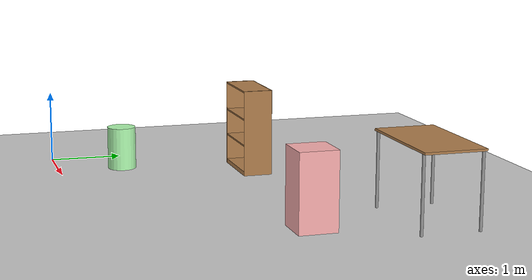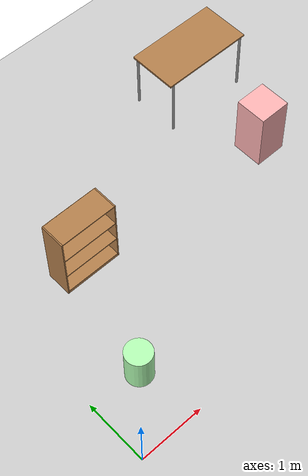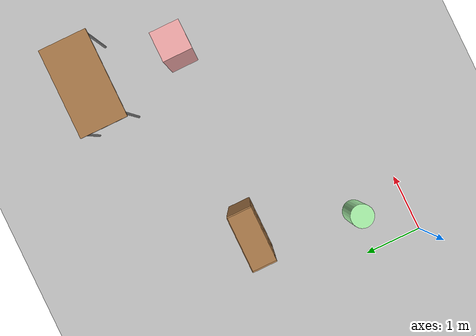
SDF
<sdf version="1.6">
 <world name="default">
  <model name="ground_plane">
   <static>1</static>
   <link name="link">
    <collision name="collision">
     <geometry><plane><normal>0 0 1</normal><size>100 100</size></plane></geometry>
     <surface><friction><ode><mu>100</mu><mu2>50</mu2></ode></friction></surface>
    </collision>
    <visual name="visual">
     <cast_shadows>0</cast_shadows>
     <geometry><plane><normal>0 0 1</normal><size>100 100</size></plane></geometry>
     <material>
      <script><uri>file://media/materials/scripts/gazebo.material</uri><name>Gazebo/Grey</name></script>
     </material>
    </visual>
   </link>
  </model>
  <model name="bookshelf">
   <static>1</static>
   <link name="link">
    <inertial><mass>1</mass></inertial>
    <collision name="back">
     <pose>0 0.005 0.6 0 -0 0</pose>
     <geometry><box><size>0.9 0.01 1.2</size></box></geometry>
    </collision>
    <visual name="visual1">
     <pose>0 0.005 0.6 0 -0 0</pose>
     <geometry><box><size>0.9 0.01 1.2</size></box></geometry>
     <material>
      <script><uri>file://media/materials/scripts/gazebo.material</uri><name>Gazebo/Wood</name></script>
     </material>
    </visual>
    <collision name="left_side">
     <pose>0.45 -0.195 0.6 0 -0 0</pose>
     <geometry><box><size>0.02 0.4 1.2</size></box></geometry>
    </collision>
    <visual name="visual2">
     <pose>0.45 -0.195 0.6 0 -0 0</pose>
     <geometry><box><size>0.02 0.4 1.2</size></box></geometry>
     <material>
      <script><uri>file://media/materials/scripts/gazebo.material</uri><name>Gazebo/Wood</name></script>
     </material>
    </visual>
    <collision name="right_side">
     <pose>-0.45 -0.195 0.6 0 -0 0</pose>
     <geometry><box><size>0.02 0.4 1.2</size></box></geometry>
    </collision>
    <visual name="visual3">
     <pose>-0.45 -0.195 0.6 0 -0 0</pose>
     <geometry><box><size>0.02 0.4 1.2</size></box></geometry>
     <material>
      <script><uri>file://media/materials/scripts/gazebo.material</uri><name>Gazebo/Wood</name></script>
     </material>
    </visual>
    <collision name="bottom">
     <pose>0 -0.195 0.03 0 -0 0</pose>
     <geometry><box><size>0.88 0.4 0.06</size></box></geometry>
    </collision>
    <visual name="visual4">
     <pose>0 -0.195 0.03 0 -0 0</pose>
     <geometry><box><size>0.88 0.4 0.06</size></box></geometry>
     <material>
      <script><uri>file://media/materials/scripts/gazebo.material</uri><name>Gazebo/Wood</name></script>
     </material>
    </visual>
    <collision name="top">
     <pose>0 -0.195 1.19 0 -0 0</pose>
     <geometry><box><size>0.88 0.4 0.02</size></box></geometry>
    </collision>
    <visual name="visual5">
     <pose>0 -0.195 1.19 0 -0 0</pose>
     <geometry><box><size>0.88 0.4 0.02</size></box></geometry>
     <material>
      <script><uri>file://media/materials/scripts/gazebo.material</uri><name>Gazebo/Wood</name></script>
     </material>
    </visual>
    <collision name="low_shelf">
     <pose>0 -0.195 0.43 0 -0 0</pose>
     <geometry><box><size>0.88 0.4 0.02</size></box></geometry>
    </collision>
    <visual name="visual6">
     <pose>0 -0.195 0.43 0 -0 0</pose>
     <geometry><box><size>0.88 0.4 0.02</size></box></geometry>
     <material>
      <script><uri>file://media/materials/scripts/gazebo.material</uri><name>Gazebo/Wood</name></script>
     </material>
    </visual>
    <collision name="high_shelf">
     <pose>0 -0.195 0.8 0 -0 0</pose>
     <geometry><box><size>0.88 0.4 0.02</size></box></geometry>
    </collision>
    <visual name="visual7">
     <pose>0 -0.195 0.8 0 -0 0</pose>
     <geometry><box><size>0.88 0.4 0.02</size></box></geometry>
     <material>
      <script><uri>file://media/materials/scripts/gazebo.material</uri><name>Gazebo/Wood</name></script>
     </material>
    </visual>
   </link>
   <pose>1.32856 2.84025 0 0 -0 0</pose>
  </model>
  <model name="table">
   <static>1</static>
   <link name="link">
    <collision name="surface">
     <pose>0 0 1 0 -0 0</pose>
     <geometry><box><size>1.5 0.8 0.03</size></box></geometry>
     <surface><friction><ode><mu>0.6</mu><mu2>0.6</mu2></ode></friction></surface>
    </collision>
    <visual name="visual1">
     <pose>0 0 1 0 -0 0</pose>
     <geometry><box><size>1.5 0.8 0.03</size></box></geometry>
     <material>
      <script><uri>file://media/materials/scripts/gazebo.material</uri><name>Gazebo/Wood</name></script>
     </material>
    </visual>
    <collision name="front_left_leg">
     <pose>0.68 0.38 0.5 0 -0 0</pose>
     <geometry><cylinder><radius>0.02</radius><length>1</length></cylinder></geometry>
    </collision>
    <visual name="front_left_leg">
     <pose>0.68 0.38 0.5 0 -0 0</pose>
     <geometry><cylinder><radius>0.02</radius><length>1</length></cylinder></geometry>
     <material>
      <script><uri>file://media/materials/scripts/gazebo.material</uri><name>Gazebo/Grey</name></script>
     </material>
    </visual>
    <collision name="front_right_leg">
     <pose>0.68 -0.38 0.5 0 -0 0</pose>
     <geometry><cylinder><radius>0.02</radius><length>1</length></cylinder></geometry>
    </collision>
    <visual name="front_right_leg">
     <pose>0.68 -0.38 0.5 0 -0 0</pose>
     <geometry><cylinder><radius>0.02</radius><length>1</length></cylinder></geometry>
     <material>
      <script><uri>file://media/materials/scripts/gazebo.material</uri><name>Gazebo/Grey</name></script>
     </material>
    </visual>
    <collision name="back_right_leg">
     <pose>-0.68 -0.38 0.5 0 -0 0</pose>
     <geometry><cylinder><radius>0.02</radius><length>1</length></cylinder></geometry>
    </collision>
    <visual name="back_right_leg">
     <pose>-0.68 -0.38 0.5 0 -0 0</pose>
     <geometry><cylinder><radius>0.02</radius><length>1</length></cylinder></geometry>
     <material>
      <script><uri>file://media/materials/scripts/gazebo.material</uri><name>Gazebo/Grey</name></script>
     </material>
    </visual>
    <collision name="back_left_leg">
     <pose>-0.68 0.38 0.5 0 -0 0</pose>
     <geometry><cylinder><radius>0.02</radius><length>1</length></cylinder></geometry>
    </collision>
    <visual name="back_left_leg">
     <pose>-0.68 0.38 0.5 0 -0 0</pose>
     <geometry><cylinder><radius>0.02</radius><length>1</length></cylinder></geometry>
     <material>
      <script><uri>file://media/materials/scripts/gazebo.material</uri><name>Gazebo/Grey</name></script>
     </material>
    </visual>
   </link>
   <pose>4.5763 3.95533 0 0 -0 0</pose>
  </model>
  <model name="unit_cylinder">
   <link name="link">
    <inertial>
     <mass>100</mass>
     <inertia><ixx>0.145833</ixx><ixy>0</ixy><ixz>0</ixz><iyy>0.145833</iyy><iyz>0</iyz><izz>0.125</izz></inertia>
    </inertial>
    <visual name="visual">
     <geometry><cylinder><radius>0.2</radius><length>0.6</length></cylinder></geometry>
     <material>
      <script><name>Gazebo/Grey</name><uri>file://media/materials/scripts/gazebo.material</uri></script>
      <shader type="pixel"><normal_map>__default__</normal_map></shader>
      <ambient>0.3 1 0.3 1</ambient>
      <diffuse>0.7 1 0.7 1</diffuse>
      <specular>0.01 1 0.01 1</specular>
      <emissive>0 1 0 1</emissive>
     </material>
    </visual>
    <collision name="collision">
     <geometry><cylinder><radius>0.2</radius><length>0.6</length></cylinder></geometry>
     <surface>
      <friction>
       <ode><mu>1</mu><mu2>1</mu2><fdir1>0 0 0</fdir1><slip1>0</slip1><slip2>0</slip2></ode>
       <torsional>
        <coefficient>1</coefficient>
        <patch_radius>0</patch_radius>
        <surface_radius>0</surface_radius>
        <use_patch_radius>1</use_patch_radius>
        <ode><slip>0</slip></ode>
       </torsional>
      </friction>
      <bounce><restitution_coefficient>0</restitution_coefficient><threshold>1e+06</threshold></bounce>
      <contact>
       <collide_without_contact>0</collide_without_contact>
       <collide_without_contact_bitmask>1</collide_without_contact_bitmask>
       <collide_bitmask>1</collide_bitmask>
       <ode>
        <soft_cfm>0</soft_cfm>
        <soft_erp>0.2</soft_erp>
        <kp>1e+13</kp>
        <kd>1</kd>
        <max_vel>0.01</max_vel>
        <min_depth>0</min_depth>
       </ode>
       <bullet>
        <split_impulse>1</split_impulse>
        <split_impulse_penetration_threshold>-0.01</split_impulse_penetration_threshold>
        <soft_cfm>0</soft_cfm>
        <soft_erp>0.2</soft_erp>
        <kp>1e+13</kp>
        <kd>1</kd>
       </bullet>
      </contact>
     </surface>
    </collision>
   </link>
   <static>0</static>
   <pose>0.771669 0.902087 0.3 4e-06 6e-06 0.000292</pose>
  </model>
  <model name="unit_box">
   <link name="link">
    <inertial>
     <mass>100</mass>
     <inertia>
      <ixx>0.166667</ixx>
      <ixy>0</ixy>
      <ixz>0</ixz>
      <iyy>0.166667</iyy>
      <iyz>0</iyz>
      <izz>0.166667</izz>
     </inertia>
    </inertial>
    <visual name="visual">
     <geometry><box><size>0.5 0.5 1</size></box></geometry>
     <material>
      <script><name>Gazebo/Grey</name><uri>file://media/materials/scripts/gazebo.material</uri></script>
      <shader type="pixel"><normal_map>__default__</normal_map></shader>
      <ambient>1 0.3 0.3 1</ambient>
      <diffuse>1 0.7 0.7 1</diffuse>
      <specular>1 0.01 0.01 1</specular>
      <emissive>1 0 0 1</emissive>
     </material>
    </visual>
    <collision name="collision">
     <geometry><box><size>0.5 0.5 1</size></box></geometry>
     <surface>
      <friction>
       <ode><mu>1</mu><mu2>1</mu2><fdir1>0 0 0</fdir1><slip1>0</slip1><slip2>0</slip2></ode>
       <torsional>
        <coefficient>1</coefficient>
        <patch_radius>0</patch_radius>
        <surface_radius>0</surface_radius>
        <use_patch_radius>1</use_patch_radius>
        <ode><slip>0</slip></ode>
       </torsional>
      </friction>
      <bounce><restitution_coefficient>0</restitution_coefficient><threshold>1e+06</threshold></bounce>
      <contact>
       <collide_without_contact>0</collide_without_contact>
       <collide_without_contact_bitmask>1</collide_without_contact_bitmask>
       <collide_bitmask>1</collide_bitmask>
       <ode>
        <soft_cfm>0</soft_cfm>
        <soft_erp>0.2</soft_erp>
        <kp>1e+13</kp>
        <kd>1</kd>
        <max_vel>0.01</max_vel>
        <min_depth>0</min_depth>
       </ode>
       <bullet>
        <split_impulse>1</split_impulse>
        <split_impulse_penetration_threshold>-0.01</split_impulse_penetration_threshold>
        <soft_cfm>0</soft_cfm>
        <soft_erp>0.2</soft_erp>
        <kp>1e+13</kp>
        <kd>1</kd>
       </bullet>
      </contact>
     </surface>
    </collision>
   </link>
   <static>0</static>
   <pose>4.59122 2.45541 0.499996 -8e-06 3e-06 0.002454</pose>
  </model>
 </world>
</sdf>
